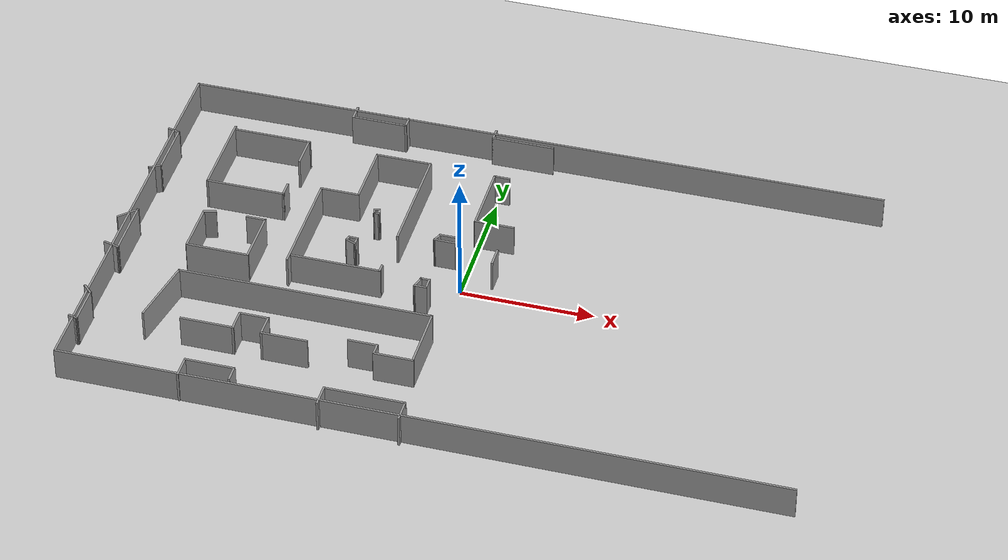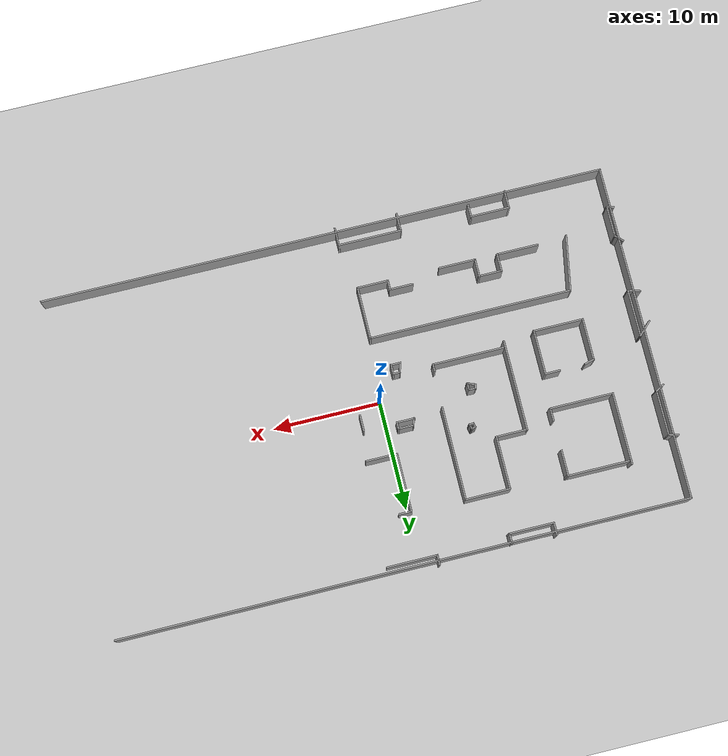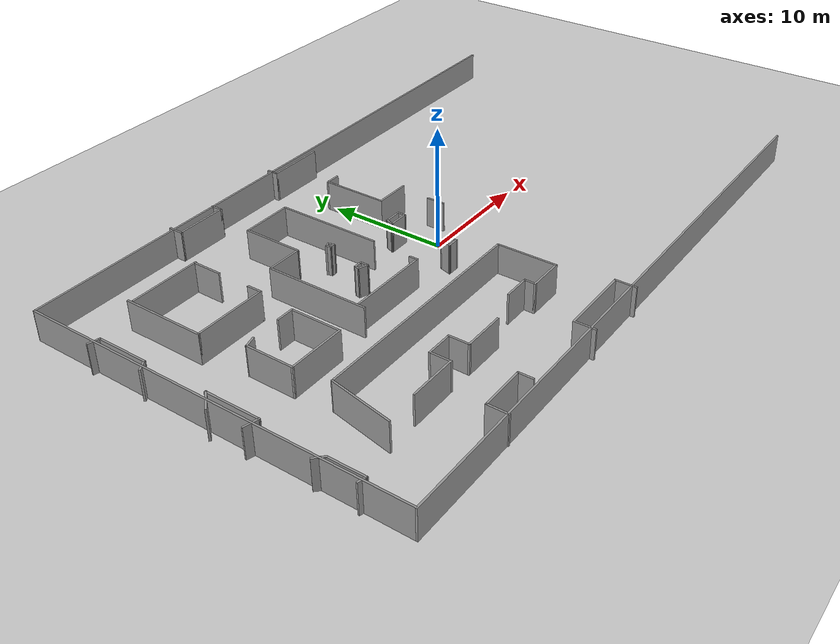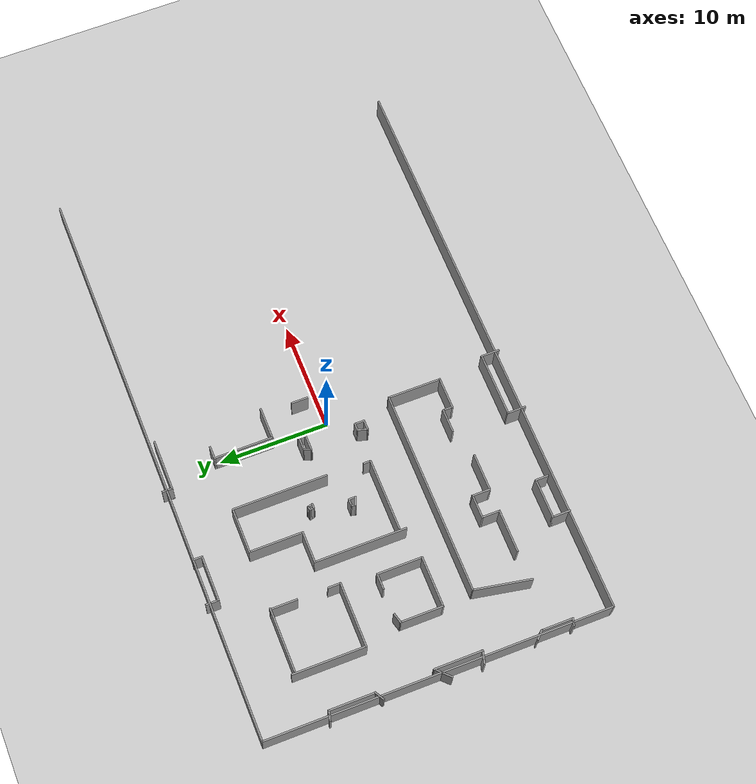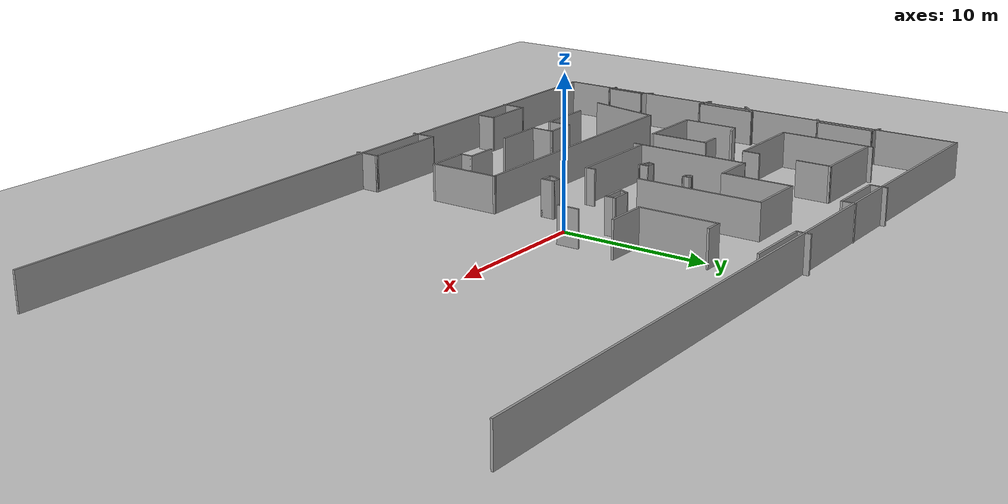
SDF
<sdf version="1.6">
 <world name="default">
  <model name="ground_plane">
   <static>1</static>
   <link name="link">
    <collision name="collision">
     <geometry><plane><normal>0 0 1</normal><size>100 100</size></plane></geometry>
     <surface><friction><ode><mu>100</mu><mu2>50</mu2></ode></friction></surface>
    </collision>
    <visual name="visual">
     <cast_shadows>0</cast_shadows>
     <geometry><plane><normal>0 0 1</normal><size>100 100</size></plane></geometry>
     <material>
      <script><uri>file://media/materials/scripts/gazebo.material</uri><name>Gazebo/Grey</name></script>
     </material>
    </visual>
   </link>
  </model>
  <model name="big_bad_building">
   <pose>1.49466 0.02184 0 0 -0 0</pose>
   <link name="Wall_100">
    <collision name="Wall_100_Collision">
     <geometry><box><size>1.75 0.15 2.5</size></box></geometry>
     <pose>0 0 1.25 0 -0 0</pose>
    </collision>
    <visual name="Wall_100_Visual">
     <pose>0 0 1.25 0 -0 0</pose>
     <geometry><box><size>1.75 0.15 2.5</size></box></geometry>
     <material>
      <script><uri>file://media/materials/scripts/gazebo.material</uri><name>Gazebo/Grey</name></script>
      <ambient>1 1 1 1</ambient>
     </material>
     <meta><layer>0</layer></meta>
    </visual>
    <pose>-17.3463 -15.4498 0 0 -0 1.5708</pose>
   </link>
   <link name="Wall_101">
    <collision name="Wall_101_Collision">
     <geometry><box><size>3.75 0.15 2.5</size></box></geometry>
     <pose>0 0 1.25 0 -0 0</pose>
    </collision>
    <visual name="Wall_101_Visual">
     <pose>0 0 1.25 0 -0 0</pose>
     <geometry><box><size>3.75 0.15 2.5</size></box></geometry>
     <material>
      <script><uri>file://media/materials/scripts/gazebo.material</uri><name>Gazebo/Grey</name></script>
      <ambient>1 1 1 1</ambient>
     </material>
     <meta><layer>0</layer></meta>
    </visual>
    <pose>-15.5463 -14.6498 0 0 -0 0</pose>
   </link>
   <link name="Wall_102">
    <collision name="Wall_102_Collision">
     <geometry><box><size>1.25 0.15 2.5</size></box></geometry>
     <pose>0 0 1.25 0 -0 0</pose>
    </collision>
    <visual name="Wall_102_Visual">
     <pose>0 0 1.25 0 -0 0</pose>
     <geometry><box><size>1.25 0.15 2.5</size></box></geometry>
     <material>
      <script><uri>file://media/materials/scripts/gazebo.material</uri><name>Gazebo/Grey</name></script>
      <ambient>1 1 1 1</ambient>
     </material>
     <meta><layer>0</layer></meta>
    </visual>
    <pose>-13.7463 -15.1998 0 0 -0 -1.5708</pose>
   </link>
   <link name="Wall_104">
    <collision name="Wall_104_Collision">
     <geometry><box><size>1.75 0.15 2.5</size></box></geometry>
     <pose>0 0 1.25 0 -0 0</pose>
    </collision>
    <visual name="Wall_104_Visual">
     <pose>0 0 1.25 0 -0 0</pose>
     <geometry><box><size>1.75 0.15 2.5</size></box></geometry>
     <material>
      <script><uri>file://media/materials/scripts/gazebo.material</uri><name>Gazebo/Grey</name></script>
      <ambient>1 1 1 1</ambient>
     </material>
     <meta><layer>0</layer></meta>
    </visual>
    <pose>-7.13039 -15.7037 0 0 -0 1.5708</pose>
   </link>
   <link name="Wall_105">
    <collision name="Wall_105_Collision">
     <geometry><box><size>6 0.15 2.5</size></box></geometry>
     <pose>0 0 1.25 0 -0 0</pose>
    </collision>
    <visual name="Wall_105_Visual">
     <pose>0 0 1.25 0 -0 0</pose>
     <geometry><box><size>6 0.15 2.5</size></box></geometry>
     <material>
      <script><uri>file://media/materials/scripts/gazebo.material</uri><name>Gazebo/Grey</name></script>
      <ambient>1 1 1 1</ambient>
     </material>
     <meta><layer>0</layer></meta>
    </visual>
    <pose>-4.20539 -14.9037 0 0 -0 0</pose>
   </link>
   <link name="Wall_106">
    <collision name="Wall_106_Collision">
     <geometry><box><size>1.75 0.15 2.5</size></box></geometry>
     <pose>0 0 1.25 0 -0 0</pose>
    </collision>
    <visual name="Wall_106_Visual">
     <pose>0 0 1.25 0 -0 0</pose>
     <geometry><box><size>1.75 0.15 2.5</size></box></geometry>
     <material>
      <script><uri>file://media/materials/scripts/gazebo.material</uri><name>Gazebo/Grey</name></script>
      <ambient>1 1 1 1</ambient>
     </material>
     <meta><layer>0</layer></meta>
    </visual>
    <pose>-1.28039 -15.7037 0 0 -0 -1.5708</pose>
   </link>
   <link name="Wall_11">
    <collision name="Wall_11_Collision">
     <geometry><box><size>6.75 0.15 2.5</size></box></geometry>
     <pose>0 0 1.25 0 -0 0</pose>
    </collision>
    <visual name="Wall_11_Visual">
     <pose>0 0 1.25 0 -0 0</pose>
     <geometry><box><size>6.75 0.15 2.5</size></box></geometry>
     <material>
      <script><uri>file://media/materials/scripts/gazebo.material</uri><name>Gazebo/Grey</name></script>
      <ambient>1 1 1 1</ambient>
     </material>
     <meta><layer>0</layer></meta>
    </visual>
    <pose>-22.1035 7.75425 0 0 -0 -1.5708</pose>
   </link>
   <link name="Wall_12">
    <collision name="Wall_12_Collision">
     <geometry><box><size>6 0.15 2.5</size></box></geometry>
     <pose>0 0 1.25 0 -0 0</pose>
    </collision>
    <visual name="Wall_12_Visual">
     <pose>0 0 1.25 0 -0 0</pose>
     <geometry><box><size>6 0.15 2.5</size></box></geometry>
     <material>
      <script><uri>file://media/materials/scripts/gazebo.material</uri><name>Gazebo/Grey</name></script>
      <ambient>1 1 1 1</ambient>
     </material>
     <meta><layer>0</layer></meta>
    </visual>
    <pose>-19.1785 4.45425 0 0 -0 0</pose>
   </link>
   <link name="Wall_13">
    <collision name="Wall_13_Collision">
     <geometry><box><size>1.25 0.15 2.5</size></box></geometry>
     <pose>0 0 1.25 0 -0 0</pose>
    </collision>
    <visual name="Wall_13_Visual">
     <pose>0 0 1.25 0 -0 0</pose>
     <geometry><box><size>1.25 0.15 2.5</size></box></geometry>
     <material>
      <script><uri>file://media/materials/scripts/gazebo.material</uri><name>Gazebo/Grey</name></script>
      <ambient>1 1 1 1</ambient>
     </material>
     <meta><layer>0</layer></meta>
    </visual>
    <pose>-16.2535 5.00425 0 0 -0 1.5708</pose>
   </link>
   <link name="Wall_139">
    <collision name="Wall_139_Collision">
     <geometry><box><size>1.75 0.15 2.5</size></box></geometry>
     <pose>0 0 1.25 0 -0 0</pose>
    </collision>
    <visual name="Wall_139_Visual">
     <pose>0 0 1.25 0 -0 0</pose>
     <geometry><box><size>1.75 0.15 2.5</size></box></geometry>
     <material>
      <script><uri>file://media/materials/scripts/gazebo.material</uri><name>Gazebo/Grey</name></script>
      <ambient>1 1 1 1</ambient>
     </material>
     <meta><layer>0</layer></meta>
    </visual>
    <pose>-3.28465 2.40532 0 0 -0 0</pose>
   </link>
   <link name="Wall_140">
    <collision name="Wall_140_Collision">
     <geometry><box><size>0.75 0.15 2.5</size></box></geometry>
     <pose>0 0 1.25 0 -0 0</pose>
    </collision>
    <visual name="Wall_140_Visual">
     <pose>0 0 1.25 0 -0 0</pose>
     <geometry><box><size>0.75 0.15 2.5</size></box></geometry>
     <material>
      <script><uri>file://media/materials/scripts/gazebo.material</uri><name>Gazebo/Grey</name></script>
      <ambient>1 1 1 1</ambient>
     </material>
     <meta><layer>0</layer></meta>
    </visual>
    <pose>-2.48465 2.70532 0 0 -0 1.5708</pose>
   </link>
   <link name="Wall_141">
    <collision name="Wall_141_Collision">
     <geometry><box><size>1.5 0.15 2.5</size></box></geometry>
     <pose>0 0 1.25 0 -0 0</pose>
    </collision>
    <visual name="Wall_141_Visual">
     <pose>0 0 1.25 0 -0 0</pose>
     <geometry><box><size>1.5 0.15 2.5</size></box></geometry>
     <material>
      <script><uri>file://media/materials/scripts/gazebo.material</uri><name>Gazebo/Grey</name></script>
      <ambient>1 1 1 1</ambient>
     </material>
     <meta><layer>0</layer></meta>
    </visual>
    <pose>-3.15965 3.00532 0 0 -0 3.14159</pose>
   </link>
   <link name="Wall_142">
    <collision name="Wall_142_Collision">
     <geometry><box><size>0.8 0.15 2.5</size></box></geometry>
     <pose>0 0 1.25 0 -0 0</pose>
    </collision>
    <visual name="Wall_142_Visual">
     <pose>0 0 1.25 0 -0 0</pose>
     <geometry><box><size>0.8 0.15 2.5</size></box></geometry>
     <material>
      <script><uri>file://media/materials/scripts/gazebo.material</uri><name>Gazebo/Grey</name></script>
      <ambient>1 1 1 1</ambient>
     </material>
     <meta><layer>0</layer></meta>
    </visual>
    <pose>-3.95965 2.70532 0 0 -0 -1.96559</pose>
   </link>
   <link name="Wall_144">
    <collision name="Wall_144_Collision">
     <geometry><box><size>1.25 0.15 2.5</size></box></geometry>
     <pose>0 0 1.25 0 -0 0</pose>
    </collision>
    <visual name="Wall_144_Visual">
     <pose>0 0 1.25 0 -0 0</pose>
     <geometry><box><size>1.25 0.15 2.5</size></box></geometry>
     <material>
      <script><uri>file://media/materials/scripts/gazebo.material</uri><name>Gazebo/Grey</name></script>
      <ambient>1 1 1 1</ambient>
     </material>
     <meta><layer>0</layer></meta>
    </visual>
    <pose>-13.913 15.0993 0 0 -0 -1.5708</pose>
   </link>
   <link name="Wall_145">
    <collision name="Wall_145_Collision">
     <geometry><box><size>4.25 0.15 2.5</size></box></geometry>
     <pose>0 0 1.25 0 -0 0</pose>
    </collision>
    <visual name="Wall_145_Visual">
     <pose>0 0 1.25 0 -0 0</pose>
     <geometry><box><size>4.25 0.15 2.5</size></box></geometry>
     <material>
      <script><uri>file://media/materials/scripts/gazebo.material</uri><name>Gazebo/Grey</name></script>
      <ambient>1 1 1 1</ambient>
     </material>
     <meta><layer>0</layer></meta>
    </visual>
    <pose>-11.863 14.5493 0 0 -0 0</pose>
   </link>
   <link name="Wall_146">
    <collision name="Wall_146_Collision">
     <geometry><box><size>1 0.15 2.5</size></box></geometry>
     <pose>0 0 1.25 0 -0 0</pose>
    </collision>
    <visual name="Wall_146_Visual">
     <pose>0 0 1.25 0 -0 0</pose>
     <geometry><box><size>1 0.15 2.5</size></box></geometry>
     <material>
      <script><uri>file://media/materials/scripts/gazebo.material</uri><name>Gazebo/Grey</name></script>
      <ambient>1 1 1 1</ambient>
     </material>
     <meta><layer>0</layer></meta>
    </visual>
    <pose>-9.81303 14.9743 0 0 -0 1.5708</pose>
   </link>
   <link name="Wall_148">
    <collision name="Wall_148_Collision">
     <geometry><box><size>1 0.15 2.5</size></box></geometry>
     <pose>0 0 1.25 0 -0 0</pose>
    </collision>
    <visual name="Wall_148_Visual">
     <pose>0 0 1.25 0 -0 0</pose>
     <geometry><box><size>1 0.15 2.5</size></box></geometry>
     <material>
      <script><uri>file://media/materials/scripts/gazebo.material</uri><name>Gazebo/Grey</name></script>
      <ambient>1 1 1 1</ambient>
     </material>
     <meta><layer>0</layer></meta>
    </visual>
    <pose>-3.0878 15.3082 0 0 -0 -1.5708</pose>
   </link>
   <link name="Wall_149">
    <collision name="Wall_149_Collision">
     <geometry><box><size>4.75 0.15 2.5</size></box></geometry>
     <pose>0 0 1.25 0 -0 0</pose>
    </collision>
    <visual name="Wall_149_Visual">
     <pose>0 0 1.25 0 -0 0</pose>
     <geometry><box><size>4.75 0.15 2.5</size></box></geometry>
     <material>
      <script><uri>file://media/materials/scripts/gazebo.material</uri><name>Gazebo/Grey</name></script>
      <ambient>1 1 1 1</ambient>
     </material>
     <meta><layer>0</layer></meta>
    </visual>
    <pose>-0.787797 14.8832 0 0 -0 0</pose>
   </link>
   <link name="Wall_15">
    <collision name="Wall_15_Collision">
     <geometry><box><size>1.5 0.15 2.5</size></box></geometry>
     <pose>0 0 1.25 0 -0 0</pose>
    </collision>
    <visual name="Wall_15_Visual">
     <pose>0 0 1.25 0 -0 0</pose>
     <geometry><box><size>1.5 0.15 2.5</size></box></geometry>
     <material>
      <script><uri>file://media/materials/scripts/gazebo.material</uri><name>Gazebo/Grey</name></script>
      <ambient>1 1 1 1</ambient>
     </material>
     <meta><layer>0</layer></meta>
    </visual>
    <pose>-17.3058 1.26316 0 0 -0 0</pose>
   </link>
   <link name="Wall_16">
    <collision name="Wall_16_Collision">
     <geometry><box><size>4.25 0.15 2.5</size></box></geometry>
     <pose>0 0 1.25 0 -0 0</pose>
    </collision>
    <visual name="Wall_16_Visual">
     <pose>0 0 1.25 0 -0 0</pose>
     <geometry><box><size>4.25 0.15 2.5</size></box></geometry>
     <material>
      <script><uri>file://media/materials/scripts/gazebo.material</uri><name>Gazebo/Grey</name></script>
      <ambient>1 1 1 1</ambient>
     </material>
     <meta><layer>0</layer></meta>
    </visual>
    <pose>-16.6308 -0.786836 0 0 -0 -1.5708</pose>
   </link>
   <link name="Wall_17">
    <collision name="Wall_17_Collision">
     <geometry><box><size>4.75 0.15 2.5</size></box></geometry>
     <pose>0 0 1.25 0 -0 0</pose>
    </collision>
    <visual name="Wall_17_Visual">
     <pose>0 0 1.25 0 -0 0</pose>
     <geometry><box><size>4.75 0.15 2.5</size></box></geometry>
     <material>
      <script><uri>file://media/materials/scripts/gazebo.material</uri><name>Gazebo/Grey</name></script>
      <ambient>1 1 1 1</ambient>
     </material>
     <meta><layer>0</layer></meta>
    </visual>
    <pose>-18.9308 -2.83684 0 0 -0 3.14159</pose>
   </link>
   <link name="Wall_172">
    <collision name="Wall_172_Collision">
     <geometry><box><size>1 0.15 2.5</size></box></geometry>
     <pose>0 0 1.25 0 -0 0</pose>
    </collision>
    <visual name="Wall_172_Visual">
     <pose>0 0 1.25 0 -0 0</pose>
     <geometry><box><size>1 0.15 2.5</size></box></geometry>
     <material>
      <script><uri>file://media/materials/scripts/gazebo.material</uri><name>Gazebo/Grey</name></script>
      <ambient>1 1 1 1</ambient>
     </material>
     <meta><layer>0</layer></meta>
    </visual>
    <pose>-26.4257 9.41339 0 0 -0 -0.261799</pose>
   </link>
   <link name="Wall_173">
    <collision name="Wall_173_Collision">
     <geometry><box><size>4.25 0.15 2.5</size></box></geometry>
     <pose>0 0 1.25 0 -0 0</pose>
    </collision>
    <visual name="Wall_173_Visual">
     <pose>0 0 1.25 0 -0 0</pose>
     <geometry><box><size>4.25 0.15 2.5</size></box></geometry>
     <material>
      <script><uri>file://media/materials/scripts/gazebo.material</uri><name>Gazebo/Grey</name></script>
      <ambient>1 1 1 1</ambient>
     </material>
     <meta><layer>0</layer></meta>
    </visual>
    <pose>-26.0151 7.2534 0 0 -0 -1.5708</pose>
   </link>
   <link name="Wall_174">
    <collision name="Wall_174_Collision">
     <geometry><box><size>1 0.15 2.5</size></box></geometry>
     <pose>0 0 1.25 0 -0 0</pose>
    </collision>
    <visual name="Wall_174_Visual">
     <pose>0 0 1.25 0 -0 0</pose>
     <geometry><box><size>1 0.15 2.5</size></box></geometry>
     <material>
      <script><uri>file://media/materials/scripts/gazebo.material</uri><name>Gazebo/Grey</name></script>
      <ambient>1 1 1 1</ambient>
     </material>
     <meta><layer>0</layer></meta>
    </visual>
    <pose>-26.3832 4.9909 0 0 -0 -2.61799</pose>
   </link>
   <link name="Wall_176">
    <collision name="Wall_176_Collision">
     <geometry><box><size>1.75 0.15 2.5</size></box></geometry>
     <pose>0 0 1.25 0 -0 0</pose>
    </collision>
    <visual name="Wall_176_Visual">
     <pose>0 0 1.25 0 -0 0</pose>
     <geometry><box><size>1.75 0.15 2.5</size></box></geometry>
     <material>
      <script><uri>file://media/materials/scripts/gazebo.material</uri><name>Gazebo/Grey</name></script>
      <ambient>1 1 1 1</ambient>
     </material>
     <meta><layer>0</layer></meta>
    </visual>
    <pose>-26.5222 -0.652236 0 0 -0 0.785398</pose>
   </link>
   <link name="Wall_177">
    <collision name="Wall_177_Collision">
     <geometry><box><size>4.5 0.15 2.5</size></box></geometry>
     <pose>0 0 1.25 0 -0 0</pose>
    </collision>
    <visual name="Wall_177_Visual">
     <pose>0 0 1.25 0 -0 0</pose>
     <geometry><box><size>4.5 0.15 2.5</size></box></geometry>
     <material>
      <script><uri>file://media/materials/scripts/gazebo.material</uri><name>Gazebo/Grey</name></script>
      <ambient>1 1 1 1</ambient>
     </material>
     <meta><layer>0</layer></meta>
    </visual>
    <pose>-25.9566 -2.26155 0 0 -0 -1.5708</pose>
   </link>
   <link name="Wall_178">
    <collision name="Wall_178_Collision">
     <geometry><box><size>1.25 0.15 2.5</size></box></geometry>
     <pose>0 0 1.25 0 -0 0</pose>
    </collision>
    <visual name="Wall_178_Visual">
     <pose>0 0 1.25 0 -0 0</pose>
     <geometry><box><size>1.25 0.15 2.5</size></box></geometry>
     <material>
      <script><uri>file://media/materials/scripts/gazebo.material</uri><name>Gazebo/Grey</name></script>
      <ambient>1 1 1 1</ambient>
     </material>
     <meta><layer>0</layer></meta>
    </visual>
    <pose>-26.4878 -4.2942 0 0 -0 2.87979</pose>
   </link>
   <link name="Wall_18">
    <collision name="Wall_18_Collision">
     <geometry><box><size>4 0.15 2.5</size></box></geometry>
     <pose>0 0 1.25 0 -0 0</pose>
    </collision>
    <visual name="Wall_18_Visual">
     <pose>0 0 1.25 0 -0 0</pose>
     <geometry><box><size>4 0.15 2.5</size></box></geometry>
     <material>
      <script><uri>file://media/materials/scripts/gazebo.material</uri><name>Gazebo/Grey</name></script>
      <ambient>1 1 1 1</ambient>
     </material>
     <meta><layer>0</layer></meta>
    </visual>
    <pose>-21.2308 -0.911836 0 0 -0 1.5708</pose>
   </link>
   <link name="Wall_180">
    <collision name="Wall_180_Collision">
     <geometry><box><size>1 0.15 2.5</size></box></geometry>
     <pose>0 0 1.25 0 -0 0</pose>
    </collision>
    <visual name="Wall_180_Visual">
     <pose>0 0 1.25 0 -0 0</pose>
     <geometry><box><size>1 0.15 2.5</size></box></geometry>
     <material>
      <script><uri>file://media/materials/scripts/gazebo.material</uri><name>Gazebo/Grey</name></script>
      <ambient>1 1 1 1</ambient>
     </material>
     <meta><layer>0</layer></meta>
    </visual>
    <pose>-26.4517 -9.40659 0 0 -0 -0.785398</pose>
   </link>
   <link name="Wall_181">
    <collision name="Wall_181_Collision">
     <geometry><box><size>3 0.15 2.5</size></box></geometry>
     <pose>0 0 1.25 0 -0 0</pose>
    </collision>
    <visual name="Wall_181_Visual">
     <pose>0 0 1.25 0 -0 0</pose>
     <geometry><box><size>3 0.15 2.5</size></box></geometry>
     <material>
      <script><uri>file://media/materials/scripts/gazebo.material</uri><name>Gazebo/Grey</name></script>
      <ambient>1 1 1 1</ambient>
     </material>
     <meta><layer>0</layer></meta>
    </visual>
    <pose>-26.1512 -11.1321 0 0 -0 -1.5708</pose>
   </link>
   <link name="Wall_182">
    <collision name="Wall_182_Collision">
     <geometry><box><size>0.75 0.15 2.5</size></box></geometry>
     <pose>0 0 1.25 0 -0 0</pose>
    </collision>
    <visual name="Wall_182_Visual">
     <pose>0 0 1.25 0 -0 0</pose>
     <geometry><box><size>0.75 0.15 2.5</size></box></geometry>
     <material>
      <script><uri>file://media/materials/scripts/gazebo.material</uri><name>Gazebo/Grey</name></script>
      <ambient>1 1 1 1</ambient>
     </material>
     <meta><layer>0</layer></meta>
    </visual>
    <pose>-26.441 -12.4795 0 0 -0 2.87979</pose>
   </link>
   <link name="Wall_19">
    <collision name="Wall_19_Collision">
     <geometry><box><size>1 0.15 2.5</size></box></geometry>
     <pose>0 0 1.25 0 -0 0</pose>
    </collision>
    <visual name="Wall_19_Visual">
     <pose>0 0 1.25 0 -0 0</pose>
     <geometry><box><size>1 0.15 2.5</size></box></geometry>
     <material>
      <script><uri>file://media/materials/scripts/gazebo.material</uri><name>Gazebo/Grey</name></script>
      <ambient>1 1 1 1</ambient>
     </material>
     <meta><layer>0</layer></meta>
    </visual>
    <pose>-20.8203 1.12316 0 0 -0 0.261799</pose>
   </link>
   <link name="Wall_2">
    <collision name="Wall_2_Collision">
     <geometry><box><size>31.5 0.15 2.5</size></box></geometry>
     <pose>0 0 1.25 0 -0 0</pose>
    </collision>
    <visual name="Wall_2_Visual">
     <pose>0 0 1.25 0 -0 0</pose>
     <geometry><box><size>31.5 0.15 2.5</size></box></geometry>
     <material>
      <script><uri>file://media/materials/scripts/gazebo.material</uri><name>Gazebo/Grey</name></script>
      <ambient>1 1 1 1</ambient>
     </material>
     <meta><layer>0</layer></meta>
    </visual>
    <pose>-26.4368 -0.407823 0 0 -0 1.5708</pose>
   </link>
   <link name="Wall_21">
    <collision name="Wall_21_Collision">
     <geometry><box><size>19 0.15 2.5</size></box></geometry>
     <pose>0 0 1.25 0 -0 0</pose>
    </collision>
    <visual name="Wall_21_Visual">
     <pose>0 0 1.25 0 -0 0</pose>
     <geometry><box><size>19 0.15 2.5</size></box></geometry>
     <material>
      <script><uri>file://media/materials/scripts/gazebo.material</uri><name>Gazebo/Grey</name></script>
      <ambient>1 1 1 1</ambient>
     </material>
     <meta><layer>0</layer></meta>
    </visual>
    <pose>-11.4112 -5.71666 0 0 -0 0</pose>
   </link>
   <link name="Wall_22">
    <collision name="Wall_22_Collision">
     <geometry><box><size>5 0.15 2.5</size></box></geometry>
     <pose>0 0 1.25 0 -0 0</pose>
    </collision>
    <visual name="Wall_22_Visual">
     <pose>0 0 1.25 0 -0 0</pose>
     <geometry><box><size>5 0.15 2.5</size></box></geometry>
     <material>
      <script><uri>file://media/materials/scripts/gazebo.material</uri><name>Gazebo/Grey</name></script>
      <ambient>1 1 1 1</ambient>
     </material>
     <meta><layer>0</layer></meta>
    </visual>
    <pose>-1.98623 -8.14166 0 0 -0 -1.5708</pose>
   </link>
   <link name="Wall_23">
    <collision name="Wall_23_Collision">
     <geometry><box><size>3 0.15 2.5</size></box></geometry>
     <pose>0 0 1.25 0 -0 0</pose>
    </collision>
    <visual name="Wall_23_Visual">
     <pose>0 0 1.25 0 -0 0</pose>
     <geometry><box><size>3 0.15 2.5</size></box></geometry>
     <material>
      <script><uri>file://media/materials/scripts/gazebo.material</uri><name>Gazebo/Grey</name></script>
      <ambient>1 1 1 1</ambient>
     </material>
     <meta><layer>0</layer></meta>
    </visual>
    <pose>-3.41123 -10.5667 0 0 -0 3.14159</pose>
   </link>
   <link name="Wall_24">
    <collision name="Wall_24_Collision">
     <geometry><box><size>1 0.15 2.5</size></box></geometry>
     <pose>0 0 1.25 0 -0 0</pose>
    </collision>
    <visual name="Wall_24_Visual">
     <pose>0 0 1.25 0 -0 0</pose>
     <geometry><box><size>1 0.15 2.5</size></box></geometry>
     <material>
      <script><uri>file://media/materials/scripts/gazebo.material</uri><name>Gazebo/Grey</name></script>
      <ambient>1 1 1 1</ambient>
     </material>
     <meta><layer>0</layer></meta>
    </visual>
    <pose>-4.83623 -10.1417 0 0 -0 1.5708</pose>
   </link>
   <link name="Wall_25">
    <collision name="Wall_25_Collision">
     <geometry><box><size>2.25 0.15 2.5</size></box></geometry>
     <pose>0 0 1.25 0 -0 0</pose>
    </collision>
    <visual name="Wall_25_Visual">
     <pose>0 0 1.25 0 -0 0</pose>
     <geometry><box><size>2.25 0.15 2.5</size></box></geometry>
     <material>
      <script><uri>file://media/materials/scripts/gazebo.material</uri><name>Gazebo/Grey</name></script>
      <ambient>1 1 1 1</ambient>
     </material>
     <meta><layer>0</layer></meta>
    </visual>
    <pose>-5.88623 -9.71666 0 0 -0 3.14159</pose>
   </link>
   <link name="Wall_27">
    <collision name="Wall_27_Collision">
     <geometry><box><size>3.5 0.15 2.5</size></box></geometry>
     <pose>0 0 1.25 0 -0 0</pose>
    </collision>
    <visual name="Wall_27_Visual">
     <pose>0 0 1.25 0 -0 0</pose>
     <geometry><box><size>3.5 0.15 2.5</size></box></geometry>
     <material>
      <script><uri>file://media/materials/scripts/gazebo.material</uri><name>Gazebo/Grey</name></script>
      <ambient>1 1 1 1</ambient>
     </material>
     <meta><layer>0</layer></meta>
    </visual>
    <pose>-11.407 -10.6025 0 0 -0 3.14159</pose>
   </link>
   <link name="Wall_28">
    <collision name="Wall_28_Collision">
     <geometry><box><size>1.75 0.15 2.5</size></box></geometry>
     <pose>0 0 1.25 0 -0 0</pose>
    </collision>
    <visual name="Wall_28_Visual">
     <pose>0 0 1.25 0 -0 0</pose>
     <geometry><box><size>1.75 0.15 2.5</size></box></geometry>
     <material>
      <script><uri>file://media/materials/scripts/gazebo.material</uri><name>Gazebo/Grey</name></script>
      <ambient>1 1 1 1</ambient>
     </material>
     <meta><layer>0</layer></meta>
    </visual>
    <pose>-13.082 -9.80254 0 0 -0 1.5708</pose>
   </link>
   <link name="Wall_29">
    <collision name="Wall_29_Collision">
     <geometry><box><size>2.25 0.15 2.5</size></box></geometry>
     <pose>0 0 1.25 0 -0 0</pose>
    </collision>
    <visual name="Wall_29_Visual">
     <pose>0 0 1.25 0 -0 0</pose>
     <geometry><box><size>2.25 0.15 2.5</size></box></geometry>
     <material>
      <script><uri>file://media/materials/scripts/gazebo.material</uri><name>Gazebo/Grey</name></script>
      <ambient>1 1 1 1</ambient>
     </material>
     <meta><layer>0</layer></meta>
    </visual>
    <pose>-14.132 -9.00254 0 0 -0 3.14159</pose>
   </link>
   <link name="Wall_3">
    <collision name="Wall_3_Collision">
     <geometry><box><size>53 0.15 2.5</size></box></geometry>
     <pose>0 0 1.25 0 -0 0</pose>
    </collision>
    <visual name="Wall_3_Visual">
     <pose>0 0 1.25 0 -0 0</pose>
     <geometry><box><size>53 0.15 2.5</size></box></geometry>
     <material>
      <script><uri>file://media/materials/scripts/gazebo.material</uri><name>Gazebo/Grey</name></script>
      <ambient>1 1 1 1</ambient>
     </material>
     <meta><layer>0</layer></meta>
    </visual>
    <pose>-0.011805 15.3633 0 0 -0 0.002182</pose>
   </link>
   <link name="Wall_30">
    <collision name="Wall_30_Collision">
     <geometry><box><size>1.75 0.15 2.5</size></box></geometry>
     <pose>0 0 1.25 0 -0 0</pose>
    </collision>
    <visual name="Wall_30_Visual">
     <pose>0 0 1.25 0 -0 0</pose>
     <geometry><box><size>1.75 0.15 2.5</size></box></geometry>
     <material>
      <script><uri>file://media/materials/scripts/gazebo.material</uri><name>Gazebo/Grey</name></script>
      <ambient>1 1 1 1</ambient>
     </material>
     <meta><layer>0</layer></meta>
    </visual>
    <pose>-15.182 -9.80254 0 0 -0 -1.5708</pose>
   </link>
   <link name="Wall_31">
    <collision name="Wall_31_Collision">
     <geometry><box><size>4 0.15 2.5</size></box></geometry>
     <pose>0 0 1.25 0 -0 0</pose>
    </collision>
    <visual name="Wall_31_Visual">
     <pose>0 0 1.25 0 -0 0</pose>
     <geometry><box><size>4 0.15 2.5</size></box></geometry>
     <material>
      <script><uri>file://media/materials/scripts/gazebo.material</uri><name>Gazebo/Grey</name></script>
      <ambient>1 1 1 1</ambient>
     </material>
     <meta><layer>0</layer></meta>
    </visual>
    <pose>-17.107 -10.6025 0 0 -0 3.14159</pose>
   </link>
   <link name="Wall_33">
    <collision name="Wall_33_Collision">
     <geometry><box><size>5.3147 0.15 2.5</size></box></geometry>
     <pose>0 0 1.25 0 -0 0</pose>
    </collision>
    <visual name="Wall_33_Visual">
     <pose>0 0 1.25 0 -0 0</pose>
     <geometry><box><size>5.3147 0.15 2.5</size></box></geometry>
     <material>
      <script><uri>file://media/materials/scripts/gazebo.material</uri><name>Gazebo/Grey</name></script>
      <ambient>1 1 1 1</ambient>
     </material>
     <meta><layer>0</layer></meta>
    </visual>
    <pose>-21.3121 -8.25478 0 0 -0 1.38545</pose>
   </link>
   <link name="Wall_35">
    <collision name="Wall_35_Collision">
     <geometry><box><size>8.5 0.15 2.5</size></box></geometry>
     <pose>0 0 1.25 0 -0 0</pose>
    </collision>
    <visual name="Wall_35_Visual">
     <pose>0 0 1.25 0 -0 0</pose>
     <geometry><box><size>8.5 0.15 2.5</size></box></geometry>
     <material>
      <script><uri>file://media/materials/scripts/gazebo.material</uri><name>Gazebo/Grey</name></script>
      <ambient>1 1 1 1</ambient>
     </material>
     <meta><layer>0</layer></meta>
    </visual>
    <pose>-13.7295 1.63099 0 0 -0 1.5708</pose>
   </link>
   <link name="Wall_36">
    <collision name="Wall_36_Collision">
     <geometry><box><size>3 0.15 2.5</size></box></geometry>
     <pose>0 0 1.25 0 -0 0</pose>
    </collision>
    <visual name="Wall_36_Visual">
     <pose>0 0 1.25 0 -0 0</pose>
     <geometry><box><size>3 0.15 2.5</size></box></geometry>
     <material>
      <script><uri>file://media/materials/scripts/gazebo.material</uri><name>Gazebo/Grey</name></script>
      <ambient>1 1 1 1</ambient>
     </material>
     <meta><layer>0</layer></meta>
    </visual>
    <pose>-12.3045 5.80599 0 0 -0 0</pose>
   </link>
   <link name="Wall_37">
    <collision name="Wall_37_Collision">
     <geometry><box><size>5 0.15 2.5</size></box></geometry>
     <pose>0 0 1.25 0 -0 0</pose>
    </collision>
    <visual name="Wall_37_Visual">
     <pose>0 0 1.25 0 -0 0</pose>
     <geometry><box><size>5 0.15 2.5</size></box></geometry>
     <material>
      <script><uri>file://media/materials/scripts/gazebo.material</uri><name>Gazebo/Grey</name></script>
      <ambient>1 1 1 1</ambient>
     </material>
     <meta><layer>0</layer></meta>
    </visual>
    <pose>-10.8795 8.23099 0 0 -0 1.5708</pose>
   </link>
   <link name="Wall_38">
    <collision name="Wall_38_Collision">
     <geometry><box><size>4.25 0.15 2.5</size></box></geometry>
     <pose>0 0 1.25 0 -0 0</pose>
    </collision>
    <visual name="Wall_38_Visual">
     <pose>0 0 1.25 0 -0 0</pose>
     <geometry><box><size>4.25 0.15 2.5</size></box></geometry>
     <material>
      <script><uri>file://media/materials/scripts/gazebo.material</uri><name>Gazebo/Grey</name></script>
      <ambient>1 1 1 1</ambient>
     </material>
     <meta><layer>0</layer></meta>
    </visual>
    <pose>-8.8295 10.656 0 0 -0 0</pose>
   </link>
   <link name="Wall_39">
    <collision name="Wall_39_Collision">
     <geometry><box><size>8.75 0.15 2.5</size></box></geometry>
     <pose>0 0 1.25 0 -0 0</pose>
    </collision>
    <visual name="Wall_39_Visual">
     <pose>0 0 1.25 0 -0 0</pose>
     <geometry><box><size>8.75 0.15 2.5</size></box></geometry>
     <material>
      <script><uri>file://media/materials/scripts/gazebo.material</uri><name>Gazebo/Grey</name></script>
      <ambient>1 1 1 1</ambient>
     </material>
     <meta><layer>0</layer></meta>
    </visual>
    <pose>-6.7795 6.35599 0 0 -0 -1.5708</pose>
   </link>
   <link name="Wall_41">
    <collision name="Wall_41_Collision">
     <geometry><box><size>0.75 0.15 2.5</size></box></geometry>
     <pose>0 0 1.25 0 -0 0</pose>
    </collision>
    <visual name="Wall_41_Visual">
     <pose>0 0 1.25 0 -0 0</pose>
     <geometry><box><size>0.75 0.15 2.5</size></box></geometry>
     <material>
      <script><uri>file://media/materials/scripts/gazebo.material</uri><name>Gazebo/Grey</name></script>
      <ambient>1 1 1 1</ambient>
     </material>
     <meta><layer>0</layer></meta>
    </visual>
    <pose>-6.94003 -1.70186 0 0 -0 -1.5708</pose>
   </link>
   <link name="Wall_42">
    <collision name="Wall_42_Collision">
     <geometry><box><size>6.75 0.15 2.5</size></box></geometry>
     <pose>0 0 1.25 0 -0 0</pose>
    </collision>
    <visual name="Wall_42_Visual">
     <pose>0 0 1.25 0 -0 0</pose>
     <geometry><box><size>6.75 0.15 2.5</size></box></geometry>
     <material>
      <script><uri>file://media/materials/scripts/gazebo.material</uri><name>Gazebo/Grey</name></script>
      <ambient>1 1 1 1</ambient>
     </material>
     <meta><layer>0</layer></meta>
    </visual>
    <pose>-10.24 -2.00186 0 0 -0 3.14159</pose>
   </link>
   <link name="Wall_44">
    <collision name="Wall_44_Collision">
     <geometry><box><size>5.5 0.15 2.5</size></box></geometry>
     <pose>0 0 1.25 0 -0 0</pose>
    </collision>
    <visual name="Wall_44_Visual">
     <pose>0 0 1.25 0 -0 0</pose>
     <geometry><box><size>5.5 0.15 2.5</size></box></geometry>
     <material>
      <script><uri>file://media/materials/scripts/gazebo.material</uri><name>Gazebo/Grey</name></script>
      <ambient>1 1 1 1</ambient>
     </material>
     <meta><layer>0</layer></meta>
    </visual>
    <pose>-1.80034 7.85229 0 0 -0 -1.5708</pose>
   </link>
   <link name="Wall_45">
    <collision name="Wall_45_Collision">
     <geometry><box><size>3 0.15 2.5</size></box></geometry>
     <pose>0 0 1.25 0 -0 0</pose>
    </collision>
    <visual name="Wall_45_Visual">
     <pose>0 0 1.25 0 -0 0</pose>
     <geometry><box><size>3 0.15 2.5</size></box></geometry>
     <material>
      <script><uri>file://media/materials/scripts/gazebo.material</uri><name>Gazebo/Grey</name></script>
      <ambient>1 1 1 1</ambient>
     </material>
     <meta><layer>0</layer></meta>
    </visual>
    <pose>-0.375341 5.17729 0 0 -0 0</pose>
   </link>
   <link name="Wall_5">
    <collision name="Wall_5_Collision">
     <geometry><box><size>53 0.15 2.5</size></box></geometry>
     <pose>0 0 1.25 0 -0 0</pose>
    </collision>
    <visual name="Wall_5_Visual">
     <pose>0 0 1.25 0 -0 0</pose>
     <geometry><box><size>53 0.15 2.5</size></box></geometry>
     <material>
      <script><uri>file://media/materials/scripts/gazebo.material</uri><name>Gazebo/Grey</name></script>
      <ambient>1 1 1 1</ambient>
     </material>
     <meta><layer>0</layer></meta>
    </visual>
    <pose>-0.011805 -16.179 0 0 -0 3.14159</pose>
   </link>
   <link name="Wall_51">
    <collision name="Wall_51_Collision">
     <geometry><box><size>1.25 0.15 2.5</size></box></geometry>
     <pose>0 0 1.25 0 -0 0</pose>
    </collision>
    <visual name="Wall_51_Visual">
     <pose>0 0 1.25 0 -0 0</pose>
     <geometry><box><size>1.25 0.15 2.5</size></box></geometry>
     <material>
      <script><uri>file://media/materials/scripts/gazebo.material</uri><name>Gazebo/Grey</name></script>
      <ambient>1 1 1 1</ambient>
     </material>
     <meta><layer>0</layer></meta>
    </visual>
    <pose>-1.25034 10.5273 0 0 -0 0</pose>
   </link>
   <link name="Wall_53">
    <collision name="Wall_53_Collision">
     <geometry><box><size>1.55583 0.15 2.5</size></box></geometry>
     <pose>0 0 1.25 0 -0 0</pose>
    </collision>
    <visual name="Wall_53_Visual">
     <pose>0 0 1.25 0 -0 0</pose>
     <geometry><box><size>1.55583 0.15 2.5</size></box></geometry>
     <material>
      <script><uri>file://media/materials/scripts/gazebo.material</uri><name>Gazebo/Grey</name></script>
      <ambient>1 1 1 1</ambient>
     </material>
     <meta><layer>0</layer></meta>
    </visual>
    <pose>0.61087 1.7024 0 0 -0 -1.5708</pose>
   </link>
   <link name="Wall_63">
    <collision name="Wall_63_Collision">
     <geometry><box><size>1 0.15 2.5</size></box></geometry>
     <pose>0 0 1.25 0 -0 0</pose>
    </collision>
    <visual name="Wall_63_Visual">
     <pose>0 0 1.25 0 -0 0</pose>
     <geometry><box><size>1 0.15 2.5</size></box></geometry>
     <material>
      <script><uri>file://media/materials/scripts/gazebo.material</uri><name>Gazebo/Grey</name></script>
      <ambient>1 1 1 1</ambient>
     </material>
     <meta><layer>0</layer></meta>
    </visual>
    <pose>-3.65965 -2.86128 0 0 -0 0</pose>
   </link>
   <link name="Wall_64">
    <collision name="Wall_64_Collision">
     <geometry><box><size>1 0.15 2.5</size></box></geometry>
     <pose>0 0 1.25 0 -0 0</pose>
    </collision>
    <visual name="Wall_64_Visual">
     <pose>0 0 1.25 0 -0 0</pose>
     <geometry><box><size>1 0.15 2.5</size></box></geometry>
     <material>
      <script><uri>file://media/materials/scripts/gazebo.material</uri><name>Gazebo/Grey</name></script>
      <ambient>1 1 1 1</ambient>
     </material>
     <meta><layer>0</layer></meta>
    </visual>
    <pose>-3.23465 -2.43628 0 0 -0 1.5708</pose>
   </link>
   <link name="Wall_65">
    <collision name="Wall_65_Collision">
     <geometry><box><size>0.75 0.15 2.5</size></box></geometry>
     <pose>0 0 1.25 0 -0 0</pose>
    </collision>
    <visual name="Wall_65_Visual">
     <pose>0 0 1.25 0 -0 0</pose>
     <geometry><box><size>0.75 0.15 2.5</size></box></geometry>
     <material>
      <script><uri>file://media/materials/scripts/gazebo.material</uri><name>Gazebo/Grey</name></script>
      <ambient>1 1 1 1</ambient>
     </material>
     <meta><layer>0</layer></meta>
    </visual>
    <pose>-3.53465 -2.01128 0 0 -0 3.14159</pose>
   </link>
   <link name="Wall_66">
    <collision name="Wall_66_Collision">
     <geometry><box><size>1.036 0.15 2.5</size></box></geometry>
     <pose>0 0 1.25 0 -0 0</pose>
    </collision>
    <visual name="Wall_66_Visual">
     <pose>0 0 1.25 0 -0 0</pose>
     <geometry><box><size>1.036 0.15 2.5</size></box></geometry>
     <material>
      <script><uri>file://media/materials/scripts/gazebo.material</uri><name>Gazebo/Grey</name></script>
      <ambient>1 1 1 1</ambient>
     </material>
     <meta><layer>0</layer></meta>
    </visual>
    <pose>-3.95965 -2.43628 0 0 -0 -1.85685</pose>
   </link>
   <link name="Wall_68">
    <collision name="Wall_68_Collision">
     <geometry><box><size>0.75 0.15 2.5</size></box></geometry>
     <pose>0 0 1.25 0 -0 0</pose>
    </collision>
    <visual name="Wall_68_Visual">
     <pose>0 0 1.25 0 -0 0</pose>
     <geometry><box><size>0.75 0.15 2.5</size></box></geometry>
     <material>
      <script><uri>file://media/materials/scripts/gazebo.material</uri><name>Gazebo/Grey</name></script>
      <ambient>1 1 1 1</ambient>
     </material>
     <meta><layer>0</layer></meta>
    </visual>
    <pose>-9.5416 0.738276 0 0 -0 1.5708</pose>
   </link>
   <link name="Wall_69">
    <collision name="Wall_69_Collision">
     <geometry><box><size>0.75 0.15 2.5</size></box></geometry>
     <pose>0 0 1.25 0 -0 0</pose>
    </collision>
    <visual name="Wall_69_Visual">
     <pose>0 0 1.25 0 -0 0</pose>
     <geometry><box><size>0.75 0.15 2.5</size></box></geometry>
     <material>
      <script><uri>file://media/materials/scripts/gazebo.material</uri><name>Gazebo/Grey</name></script>
      <ambient>1 1 1 1</ambient>
     </material>
     <meta><layer>0</layer></meta>
    </visual>
    <pose>-9.8416 1.03828 0 0 -0 3.14159</pose>
   </link>
   <link name="Wall_70">
    <collision name="Wall_70_Collision">
     <geometry><box><size>0.5 0.15 2.5</size></box></geometry>
     <pose>0 0 1.25 0 -0 0</pose>
    </collision>
    <visual name="Wall_70_Visual">
     <pose>0 0 1.25 0 -0 0</pose>
     <geometry><box><size>0.5 0.15 2.5</size></box></geometry>
     <material>
      <script><uri>file://media/materials/scripts/gazebo.material</uri><name>Gazebo/Grey</name></script>
      <ambient>1 1 1 1</ambient>
     </material>
     <meta><layer>0</layer></meta>
    </visual>
    <pose>-10.1869 0.869239 0 0 -0 -1.8326</pose>
   </link>
   <link name="Wall_71">
    <collision name="Wall_71_Collision">
     <geometry><box><size>0.88859 0.15 2.5</size></box></geometry>
     <pose>0 0 1.25 0 -0 0</pose>
    </collision>
    <visual name="Wall_71_Visual">
     <pose>0 0 1.25 0 -0 0</pose>
     <geometry><box><size>0.88859 0.15 2.5</size></box></geometry>
     <material>
      <script><uri>file://media/materials/scripts/gazebo.material</uri><name>Gazebo/Grey</name></script>
      <ambient>1 1 1 1</ambient>
     </material>
     <meta><layer>0</layer></meta>
    </visual>
    <pose>-9.8869 0.569239 0 0 -0 -0.362518</pose>
   </link>
   <link name="Wall_73">
    <collision name="Wall_73_Collision">
     <geometry><box><size>0.5 0.15 2.5</size></box></geometry>
     <pose>0 0 1.25 0 -0 0</pose>
    </collision>
    <visual name="Wall_73_Visual">
     <pose>0 0 1.25 0 -0 0</pose>
     <geometry><box><size>0.5 0.15 2.5</size></box></geometry>
     <material>
      <script><uri>file://media/materials/scripts/gazebo.material</uri><name>Gazebo/Grey</name></script>
      <ambient>1 1 1 1</ambient>
     </material>
     <meta><layer>0</layer></meta>
    </visual>
    <pose>-9.07611 4.51742 0 0 -0 -2.87979</pose>
   </link>
   <link name="Wall_74">
    <collision name="Wall_74_Collision">
     <geometry><box><size>0.5 0.15 2.5</size></box></geometry>
     <pose>0 0 1.25 0 -0 0</pose>
    </collision>
    <visual name="Wall_74_Visual">
     <pose>0 0 1.25 0 -0 0</pose>
     <geometry><box><size>0.5 0.15 2.5</size></box></geometry>
     <material>
      <script><uri>file://media/materials/scripts/gazebo.material</uri><name>Gazebo/Grey</name></script>
      <ambient>1 1 1 1</ambient>
     </material>
     <meta><layer>0</layer></meta>
    </visual>
    <pose>-9.19985 4.30309 0 0 -0 -1.309</pose>
   </link>
   <link name="Wall_75">
    <collision name="Wall_75_Collision">
     <geometry><box><size>0.5 0.15 2.5</size></box></geometry>
     <pose>0 0 1.25 0 -0 0</pose>
    </collision>
    <visual name="Wall_75_Visual">
     <pose>0 0 1.25 0 -0 0</pose>
     <geometry><box><size>0.5 0.15 2.5</size></box></geometry>
     <material>
      <script><uri>file://media/materials/scripts/gazebo.material</uri><name>Gazebo/Grey</name></script>
      <ambient>1 1 1 1</ambient>
     </material>
     <meta><layer>0</layer></meta>
    </visual>
    <pose>-8.97956 4.13406 0 0 -0 0</pose>
   </link>
   <link name="Wall_76">
    <collision name="Wall_76_Collision">
     <geometry><box><size>0.590748 0.15 2.5</size></box></geometry>
     <pose>0 0 1.25 0 -0 0</pose>
    </collision>
    <visual name="Wall_76_Visual">
     <pose>0 0 1.25 0 -0 0</pose>
     <geometry><box><size>0.590748 0.15 2.5</size></box></geometry>
     <material>
      <script><uri>file://media/materials/scripts/gazebo.material</uri><name>Gazebo/Grey</name></script>
      <ambient>1 1 1 1</ambient>
     </material>
     <meta><layer>0</layer></meta>
    </visual>
    <pose>-8.85582 4.34839 0 0 -0 1.80553</pose>
   </link>
   <link name="Wall_8">
    <collision name="Wall_8_Collision">
     <geometry><box><size>5.87691 0.15 2.5</size></box></geometry>
     <pose>0 0 1.25 0 -0 0</pose>
    </collision>
    <visual name="Wall_8_Visual">
     <pose>0 0 1.25 0 -0 0</pose>
     <geometry><box><size>5.87691 0.15 2.5</size></box></geometry>
     <material>
      <script><uri>file://media/materials/scripts/gazebo.material</uri><name>Gazebo/Grey</name></script>
      <ambient>1 1 1 1</ambient>
     </material>
     <meta><layer>0</layer></meta>
    </visual>
    <pose>-19.0448 10.7614 0 0 -0 0</pose>
   </link>
   <link name="Wall_9">
    <collision name="Wall_9_Collision">
     <geometry><box><size>2.5 0.15 2.5</size></box></geometry>
     <pose>0 0 1.25 0 -0 0</pose>
    </collision>
    <visual name="Wall_9_Visual">
     <pose>0 0 1.25 0 -0 0</pose>
     <geometry><box><size>2.5 0.15 2.5</size></box></geometry>
     <material>
      <script><uri>file://media/materials/scripts/gazebo.material</uri><name>Gazebo/Grey</name></script>
      <ambient>1 1 1 1</ambient>
     </material>
     <meta><layer>0</layer></meta>
    </visual>
    <pose>-16.2448 9.58644 0 0 -0 -1.5708</pose>
   </link>
   <static>1</static>
  </model>
 </world>
</sdf>
